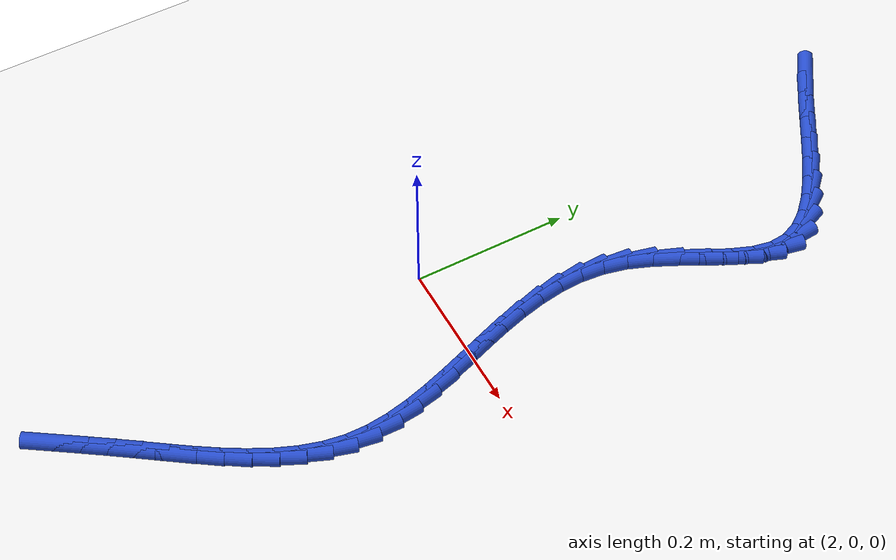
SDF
<sdf version="1.6">
 <world name="default">
  <model name="ground_plane">
   <static>1</static>
   <link name="link">
    <collision name="collision">
     <geometry><plane><normal>0 0 1</normal><size>100 100</size></plane></geometry>
     <surface><friction><ode><mu>100</mu><mu2>50</mu2></ode></friction></surface>
    </collision>
    <visual name="visual">
     <cast_shadows>0</cast_shadows>
     <geometry><plane><normal>0 0 1</normal><size>100 100</size></plane></geometry>
     <material>
      <script><uri>file://media/materials/scripts/gazebo.material</uri><name>Gazebo/WhiteGlow</name></script>
     </material>
    </visual>
   </link>
  </model>
  <model name="line">
   <link name="link_107">
    <pose>1.9585506236030734 0.600678606403354 0.01 0 1.57 -0.5856580199433036</pose>
    <collision name="collision">
     <geometry><cylinder><radius>0.01</radius><length>0.08</length></cylinder></geometry>
    </collision>
    <visual name="visual">
     <material>
      <script><name>Gazebo/Blue</name><uri>file://media/materials/scripts/gazebo.material</uri></script>
     </material>
     <geometry><cylinder><radius>0.01</radius><length>0.08</length></cylinder></geometry>
    </visual>
   </link>
   <link name="link_108">
    <pose>1.9882372597593747 0.5809878962942031 0.01 0 1.57 -0.5547781511567528</pose>
    <collision name="collision">
     <geometry><cylinder><radius>0.01</radius><length>0.08</length></cylinder></geometry>
    </collision>
    <visual name="visual">
     <material>
      <script><name>Gazebo/Blue</name><uri>file://media/materials/scripts/gazebo.material</uri></script>
     </material>
     <geometry><cylinder><radius>0.01</radius><length>0.08</length></cylinder></geometry>
    </visual>
   </link>
   <link name="link_109">
    <pose>2.0187785636430813 0.5620614860671027 0.01 0 1.57 -0.545577390045267</pose>
    <collision name="collision">
     <geometry><cylinder><radius>0.01</radius><length>0.08</length></cylinder></geometry>
    </collision>
    <visual name="visual">
     <material>
      <script><name>Gazebo/Blue</name><uri>file://media/materials/scripts/gazebo.material</uri></script>
     </material>
     <geometry><cylinder><radius>0.01</radius><length>0.08</length></cylinder></geometry>
    </visual>
   </link>
   <link name="link_110">
    <pose>2.0491899506313715 0.5436006620572417 0.01 0 1.57 -0.5581917112734185</pose>
    <collision name="collision">
     <geometry><cylinder><radius>0.01</radius><length>0.08</length></cylinder></geometry>
    </collision>
    <visual name="visual">
     <material>
      <script><name>Gazebo/Blue</name><uri>file://media/materials/scripts/gazebo.material</uri></script>
     </material>
     <geometry><cylinder><radius>0.01</radius><length>0.08</length></cylinder></geometry>
    </visual>
   </link>
   <link name="link_111">
    <pose>2.078486836101425 0.5253067105998086 0.01 0 1.57 -0.5954470958222631</pose>
    <collision name="collision">
     <geometry><cylinder><radius>0.01</radius><length>0.08</length></cylinder></geometry>
    </collision>
    <visual name="visual">
     <material>
      <script><name>Gazebo/Blue</name><uri>file://media/materials/scripts/gazebo.material</uri></script>
     </material>
     <geometry><cylinder><radius>0.01</radius><length>0.08</length></cylinder></geometry>
    </visual>
   </link>
   <link name="link_112">
    <pose>2.10568463543042 0.5068809180299926 0.01 0 1.57 -0.6636453692508444</pose>
    <collision name="collision">
     <geometry><cylinder><radius>0.01</radius><length>0.08</length></cylinder></geometry>
    </collision>
    <visual name="visual">
     <material>
      <script><name>Gazebo/Blue</name><uri>file://media/materials/scripts/gazebo.material</uri></script>
     </material>
     <geometry><cylinder><radius>0.01</radius><length>0.08</length></cylinder></geometry>
    </visual>
   </link>
   <link name="link_113">
    <pose>2.1297987639955336 0.48802457068298194 0.01 0 1.57 -0.7737852588317347</pose>
    <collision name="collision">
     <geometry><cylinder><radius>0.01</radius><length>0.08</length></cylinder></geometry>
    </collision>
    <visual name="visual">
     <material>
      <script><name>Gazebo/Blue</name><uri>file://media/materials/scripts/gazebo.material</uri></script>
     </material>
     <geometry><cylinder><radius>0.01</radius><length>0.08</length></cylinder></geometry>
    </visual>
   </link>
   <link name="link_114">
    <pose>2.149844637173947 0.4684389548939658 0.01 0 1.57 -0.9419579811060101</pose>
    <collision name="collision">
     <geometry><cylinder><radius>0.01</radius><length>0.08</length></cylinder></geometry>
    </collision>
    <visual name="visual">
     <material>
      <script><name>Gazebo/Blue</name><uri>file://media/materials/scripts/gazebo.material</uri></script>
     </material>
     <geometry><cylinder><radius>0.01</radius><length>0.08</length></cylinder></geometry>
    </visual>
   </link>
   <link name="link_115">
    <pose>2.1648376703428367 0.44782535699813253 0.01 0 1.57 -1.1832574156530093</pose>
    <collision name="collision">
     <geometry><cylinder><radius>0.01</radius><length>0.08</length></cylinder></geometry>
    </collision>
    <visual name="visual">
     <material>
      <script><name>Gazebo/Blue</name><uri>file://media/materials/scripts/gazebo.material</uri></script>
     </material>
     <geometry><cylinder><radius>0.01</radius><length>0.08</length></cylinder></geometry>
    </visual>
   </link>
   <link name="link_116">
    <pose>2.1737932788793826 0.4258850633306712 0.01 0 1.57 -1.4887716047208428</pose>
    <collision name="collision">
     <geometry><cylinder><radius>0.01</radius><length>0.08</length></cylinder></geometry>
    </collision>
    <visual name="visual">
     <material>
      <script><name>Gazebo/Blue</name><uri>file://media/materials/scripts/gazebo.material</uri></script>
     </material>
     <geometry><cylinder><radius>0.01</radius><length>0.08</length></cylinder></geometry>
    </visual>
   </link>
   <link name="link_117">
    <pose>2.1757305386080485 0.4023200567516268 0.01 0 1.57 1.3675107861714155</pose>
    <collision name="collision">
     <geometry><cylinder><radius>0.01</radius><length>0.08</length></cylinder></geometry>
    </collision>
    <visual name="visual">
     <material>
      <script><name>Gazebo/Blue</name><uri>file://media/materials/scripts/gazebo.material</uri></script>
     </material>
     <geometry><cylinder><radius>0.01</radius><length>0.08</length></cylinder></geometry>
    </visual>
   </link>
   <link name="link_118">
    <pose>2.170509671105381 0.3769923767694325 0.01 0 1.57 1.1946920104846288</pose>
    <collision name="collision">
     <geometry><cylinder><radius>0.01</radius><length>0.08</length></cylinder></geometry>
    </collision>
    <visual name="visual">
     <material>
      <script><name>Gazebo/Blue</name><uri>file://media/materials/scripts/gazebo.material</uri></script>
     </material>
     <geometry><cylinder><radius>0.01</radius><length>0.08</length></cylinder></geometry>
    </visual>
   </link>
   <link name="link_119">
    <pose>2.1599006459346484 0.35012745753758084 0.01 0 1.57 1.1099876421539596</pose>
    <collision name="collision">
     <geometry><cylinder><radius>0.01</radius><length>0.08</length></cylinder></geometry>
    </collision>
    <visual name="visual">
     <material>
      <script><name>Gazebo/Blue</name><uri>file://media/materials/scripts/gazebo.material</uri></script>
     </material>
     <geometry><cylinder><radius>0.01</radius><length>0.08</length></cylinder></geometry>
    </visual>
   </link>
   <link name="link_120">
    <pose>2.145937033579046 0.3220008922689793 0.01 0 1.57 1.0873357388289289</pose>
    <collision name="collision">
     <geometry><cylinder><radius>0.01</radius><length>0.08</length></cylinder></geometry>
    </collision>
    <visual name="visual">
     <material>
      <script><name>Gazebo/Blue</name><uri>file://media/materials/scripts/gazebo.material</uri></script>
     </material>
     <geometry><cylinder><radius>0.01</radius><length>0.08</length></cylinder></geometry>
    </visual>
   </link>
   <link name="link_121">
    <pose>2.1306524045217645 0.2928882741765342 0.01 0 1.57 1.1162961766981903</pose>
    <collision name="collision">
     <geometry><cylinder><radius>0.01</radius><length>0.08</length></cylinder></geometry>
    </collision>
    <visual name="visual">
     <material>
      <script><name>Gazebo/Blue</name><uri>file://media/materials/scripts/gazebo.material</uri></script>
     </material>
     <geometry><cylinder><radius>0.01</radius><length>0.08</length></cylinder></geometry>
    </visual>
   </link>
   <link name="link_122">
    <pose>2.116080329245997 0.2630651964731527 0.01 0 1.57 1.1982131878534867</pose>
    <collision name="collision">
     <geometry><cylinder><radius>0.01</radius><length>0.08</length></cylinder></geometry>
    </collision>
    <visual name="visual">
     <material>
      <script><name>Gazebo/Blue</name><uri>file://media/materials/scripts/gazebo.material</uri></script>
     </material>
     <geometry><cylinder><radius>0.01</radius><length>0.08</length></cylinder></geometry>
    </visual>
   </link>
   <link name="link_123">
    <pose>2.1042543782349363 0.23280725237174213 0.01 0 1.57 1.3361956965234703</pose>
    <collision name="collision">
     <geometry><cylinder><radius>0.01</radius><length>0.08</length></cylinder></geometry>
    </collision>
    <visual name="visual">
     <material>
      <script><name>Gazebo/Blue</name><uri>file://media/materials/scripts/gazebo.material</uri></script>
     </material>
     <geometry><cylinder><radius>0.01</radius><length>0.08</length></cylinder></geometry>
    </visual>
   </link>
   <link name="link_124">
    <pose>2.096979806238895 0.202369901246028 0.01 0 1.57 1.4847881495801072</pose>
    <collision name="collision">
     <geometry><cylinder><radius>0.01</radius><length>0.08</length></cylinder></geometry>
    </collision>
    <visual name="visual">
     <material>
      <script><name>Gazebo/Blue</name><uri>file://media/materials/scripts/gazebo.material</uri></script>
     </material>
     <geometry><cylinder><radius>0.01</radius><length>0.08</length></cylinder></geometry>
    </visual>
   </link>
   <link name="link_125">
    <pose>2.094349004718089 0.17185755499881866 0.01 0 1.57 -1.5273701557874415</pose>
    <collision name="collision">
     <geometry><cylinder><radius>0.01</radius><length>0.08</length></cylinder></geometry>
    </collision>
    <visual name="visual">
     <material>
      <script><name>Gazebo/Blue</name><uri>file://media/materials/scripts/gazebo.material</uri></script>
     </material>
     <geometry><cylinder><radius>0.01</radius><length>0.08</length></cylinder></geometry>
    </visual>
   </link>
   <link name="link_126">
    <pose>2.0956765748052555 0.141306036718772 0.01 0 1.57 -1.4214784284356026</pose>
    <collision name="collision">
     <geometry><cylinder><radius>0.01</radius><length>0.08</length></cylinder></geometry>
    </collision>
    <visual name="visual">
     <material>
      <script><name>Gazebo/Blue</name><uri>file://media/materials/scripts/gazebo.material</uri></script>
     </material>
     <geometry><cylinder><radius>0.01</radius><length>0.08</length></cylinder></geometry>
    </visual>
   </link>
   <link name="link_127">
    <pose>2.1002732275426728 0.1107508264500489 0.01 0 1.57 -1.3398774982804105</pose>
    <collision name="collision">
     <geometry><cylinder><radius>0.01</radius><length>0.08</length></cylinder></geometry>
    </collision>
    <visual name="visual">
     <material>
      <script><name>Gazebo/Blue</name><uri>file://media/materials/scripts/gazebo.material</uri></script>
     </material>
     <geometry><cylinder><radius>0.01</radius><length>0.08</length></cylinder></geometry>
    </visual>
   </link>
   <link name="link_128">
    <pose>2.107449673972616 0.0802274042368101 0.01 0 1.57 -1.2814463101511973</pose>
    <collision name="collision">
     <geometry><cylinder><radius>0.01</radius><length>0.08</length></cylinder></geometry>
    </collision>
    <visual name="visual">
     <material>
      <script><name>Gazebo/Blue</name><uri>file://media/materials/scripts/gazebo.material</uri></script>
     </material>
     <geometry><cylinder><radius>0.01</radius><length>0.08</length></cylinder></geometry>
    </visual>
   </link>
   <link name="link_129">
    <pose>2.116516625137362 0.049771250123216336 0.01 0 1.57 -1.2445939904384364</pose>
    <collision name="collision">
     <geometry><cylinder><radius>0.01</radius><length>0.08</length></cylinder></geometry>
    </collision>
    <visual name="visual">
     <material>
      <script><name>Gazebo/Blue</name><uri>file://media/materials/scripts/gazebo.material</uri></script>
     </material>
     <geometry><cylinder><radius>0.01</radius><length>0.08</length></cylinder></geometry>
    </visual>
   </link>
   <link name="link_130">
    <pose>2.126784792079188 0.019417844153428516 0.01 0 1.57 -1.2280965047371901</pose>
    <collision name="collision">
     <geometry><cylinder><radius>0.01</radius><length>0.08</length></cylinder></geometry>
    </collision>
    <visual name="visual">
     <material>
      <script><name>Gazebo/Blue</name><uri>file://media/materials/scripts/gazebo.material</uri></script>
     </material>
     <geometry><cylinder><radius>0.01</radius><length>0.08</length></cylinder></geometry>
    </visual>
   </link>
   <link name="link_131">
    <pose>2.137564885840369 -0.010797333628392688 0.01 0 1.57 -1.2315078558578432</pose>
    <collision name="collision">
     <geometry><cylinder><radius>0.01</radius><length>0.08</length></cylinder></geometry>
    </collision>
    <visual name="visual">
     <material>
      <script><name>Gazebo/Blue</name><uri>file://media/materials/scripts/gazebo.material</uri></script>
     </material>
     <geometry><cylinder><radius>0.01</radius><length>0.08</length></cylinder></geometry>
    </visual>
   </link>
   <link name="link_132">
    <pose>2.1481676174631805 -0.04083880317808636 0.01 0 1.57 -1.255334325025906</pose>
    <collision name="collision">
     <geometry><cylinder><radius>0.01</radius><length>0.08</length></cylinder></geometry>
    </collision>
    <visual name="visual">
     <material>
      <script><name>Gazebo/Blue</name><uri>file://media/materials/scripts/gazebo.material</uri></script>
     </material>
     <geometry><cylinder><radius>0.01</radius><length>0.08</length></cylinder></geometry>
    </visual>
   </link>
   <link name="link_133">
    <pose>2.1579036979899016 -0.07067108445149184 0.01 0 1.57 -1.3010623150173415</pose>
    <collision name="collision">
     <geometry><cylinder><radius>0.01</radius><length>0.08</length></cylinder></geometry>
    </collision>
    <visual name="visual">
     <material>
      <script><name>Gazebo/Blue</name><uri>file://media/materials/scripts/gazebo.material</uri></script>
     </material>
     <geometry><cylinder><radius>0.01</radius><length>0.08</length></cylinder></geometry>
    </visual>
   </link>
   <link name="link_134">
    <pose>2.1660838384628076 -0.10025869740444823 0.01 0 1.57 -1.3709931678786464</pose>
    <collision name="collision">
     <geometry><cylinder><radius>0.01</radius><length>0.08</length></cylinder></geometry>
    </collision>
    <visual name="visual">
     <material>
      <script><name>Gazebo/Blue</name><uri>file://media/materials/scripts/gazebo.material</uri></script>
     </material>
     <geometry><cylinder><radius>0.01</radius><length>0.08</length></cylinder></geometry>
    </visual>
   </link>
   <link name="link_135">
    <pose>2.172018749924174 -0.12956616199279475 0.01 0 1.57 -1.4676724680543445</pose>
    <collision name="collision">
     <geometry><cylinder><radius>0.01</radius><length>0.08</length></cylinder></geometry>
    </collision>
    <visual name="visual">
     <material>
      <script><name>Gazebo/Blue</name><uri>file://media/materials/scripts/gazebo.material</uri></script>
     </material>
     <geometry><cylinder><radius>0.01</radius><length>0.08</length></cylinder></geometry>
    </visual>
   </link>
   <link name="link_136">
    <pose>2.1750191434162782 -0.15855799817237068 0.01 0 1.57 1.549033965110412</pose>
    <collision name="collision">
     <geometry><cylinder><radius>0.01</radius><length>0.08</length></cylinder></geometry>
    </collision>
    <visual name="visual">
     <material>
      <script><name>Gazebo/Blue</name><uri>file://media/materials/scripts/gazebo.material</uri></script>
     </material>
     <geometry><cylinder><radius>0.01</radius><length>0.08</length></cylinder></geometry>
    </visual>
   </link>
   <link name="link_137">
    <pose>2.174395755097664 -0.1871987271625102 0.01 0 1.57 1.4062363206081296</pose>
    <collision name="collision">
     <geometry><cylinder><radius>0.01</radius><length>0.08</length></cylinder></geometry>
    </collision>
    <visual name="visual">
     <material>
      <script><name>Gazebo/Blue</name><uri>file://media/materials/scripts/gazebo.material</uri></script>
     </material>
     <geometry><cylinder><radius>0.01</radius><length>0.08</length></cylinder></geometry>
    </visual>
   </link>
   <link name="link_138">
    <pose>2.169701798373713 -0.21546506820547054 0.01 0 1.57 1.2793026464687538</pose>
    <collision name="collision">
     <geometry><cylinder><radius>0.01</radius><length>0.08</length></cylinder></geometry>
    </collision>
    <visual name="visual">
     <material>
      <script><name>Gazebo/Blue</name><uri>file://media/materials/scripts/gazebo.material</uri></script>
     </material>
     <geometry><cylinder><radius>0.01</radius><length>0.08</length></cylinder></geometry>
    </visual>
   </link>
   <link name="link_139">
    <pose>2.1613274433467966 -0.24337584435781917 0.01 0 1.57 1.176278034780922</pose>
    <collision name="collision">
     <geometry><cylinder><radius>0.01</radius><length>0.08</length></cylinder></geometry>
    </collision>
    <visual name="visual">
     <material>
      <script><name>Gazebo/Blue</name><uri>file://media/materials/scripts/gazebo.material</uri></script>
     </material>
     <geometry><cylinder><radius>0.01</radius><length>0.08</length></cylinder></geometry>
    </visual>
   </link>
   <link name="link_140">
    <pose>2.149843310925552 -0.2709589564065084 0.01 0 1.57 1.0960217643745125</pose>
    <collision name="collision">
     <geometry><cylinder><radius>0.01</radius><length>0.08</length></cylinder></geometry>
    </collision>
    <visual name="visual">
     <material>
      <script><name>Gazebo/Blue</name><uri>file://media/materials/scripts/gazebo.material</uri></script>
     </material>
     <geometry><cylinder><radius>0.01</radius><length>0.08</length></cylinder></geometry>
    </visual>
   </link>
   <link name="link_141">
    <pose>2.135820022018615 -0.2982423051384905 0.01 0 1.57 1.0362518565782906</pose>
    <collision name="collision">
     <geometry><cylinder><radius>0.01</radius><length>0.08</length></cylinder></geometry>
    </collision>
    <visual name="visual">
     <material>
      <script><name>Gazebo/Blue</name><uri>file://media/materials/scripts/gazebo.material</uri></script>
     </material>
     <geometry><cylinder><radius>0.01</radius><length>0.08</length></cylinder></geometry>
    </visual>
   </link>
   <link name="link_142">
    <pose>2.1198281975346207 -0.32525379134071786 0.01 0 1.57 0.994661493399062</pose>
    <collision name="collision">
     <geometry><cylinder><radius>0.01</radius><length>0.08</length></cylinder></geometry>
    </collision>
    <visual name="visual">
     <material>
      <script><name>Gazebo/Blue</name><uri>file://media/materials/scripts/gazebo.material</uri></script>
     </material>
     <geometry><cylinder><radius>0.01</radius><length>0.08</length></cylinder></geometry>
    </visual>
   </link>
   <link name="link_143">
    <pose>2.1024384583822067 -0.35202131580014295 0.01 0 1.57 0.9694583753066648</pose>
    <collision name="collision">
     <geometry><cylinder><radius>0.01</radius><length>0.08</length></cylinder></geometry>
    </collision>
    <visual name="visual">
     <material>
      <script><name>Gazebo/Blue</name><uri>file://media/materials/scripts/gazebo.material</uri></script>
     </material>
     <geometry><cylinder><radius>0.01</radius><length>0.08</length></cylinder></geometry>
    </visual>
   </link>
   <link name="link_144">
    <pose>2.0842214254700075 -0.37857277930371785 0.01 0 1.57 0.9595768268884229</pose>
    <collision name="collision">
     <geometry><cylinder><radius>0.01</radius><length>0.08</length></cylinder></geometry>
    </collision>
    <visual name="visual">
     <material>
      <script><name>Gazebo/Blue</name><uri>file://media/materials/scripts/gazebo.material</uri></script>
     </material>
     <geometry><cylinder><radius>0.01</radius><length>0.08</length></cylinder></geometry>
    </visual>
   </link>
   <link name="link_145">
    <pose>2.0657477197066605 -0.40493608263839437 0.01 0 1.57 0.9641073134765809</pose>
    <collision name="collision">
     <geometry><cylinder><radius>0.01</radius><length>0.08</length></cylinder></geometry>
    </collision>
    <visual name="visual">
     <material>
      <script><name>Gazebo/Blue</name><uri>file://media/materials/scripts/gazebo.material</uri></script>
     </material>
     <geometry><cylinder><radius>0.01</radius><length>0.08</length></cylinder></geometry>
    </visual>
   </link>
   <link name="link_146">
    <pose>2.0475640080046755 -0.4311373260979164 0.01 0 1.57 0.9733734954664427</pose>
    <collision name="collision">
     <geometry><cylinder><radius>0.01</radius><length>0.08</length></cylinder></geometry>
    </collision>
    <visual name="visual">
     <material>
      <script><name>Gazebo/Blue</name><uri>file://media/materials/scripts/gazebo.material</uri></script>
     </material>
     <geometry><cylinder><radius>0.01</radius><length>0.08</length></cylinder></geometry>
    </visual>
   </link>
   <link name="link_147">
    <pose>2.0298490444926047 -0.4571749559484522 0.01 0 1.57 0.9795403487715171</pose>
    <collision name="collision">
     <geometry><cylinder><radius>0.01</radius><length>0.08</length></cylinder></geometry>
    </collision>
    <visual name="visual">
     <material>
      <script><name>Gazebo/Blue</name><uri>file://media/materials/scripts/gazebo.material</uri></script>
     </material>
     <geometry><cylinder><radius>0.01</radius><length>0.08</length></cylinder></geometry>
    </visual>
   </link>
   <link name="link_148">
    <pose>2.0124934298043917 -0.48302575950591786 0.01 0 1.57 0.9822562975164824</pose>
    <collision name="collision">
     <geometry><cylinder><radius>0.01</radius><length>0.08</length></cylinder></geometry>
    </collision>
    <visual name="visual">
     <material>
      <script><name>Gazebo/Blue</name><uri>file://media/materials/scripts/gazebo.material</uri></script>
     </material>
     <geometry><cylinder><radius>0.01</radius><length>0.08</length></cylinder></geometry>
    </visual>
   </link>
  </model>
 </world>
</sdf>
